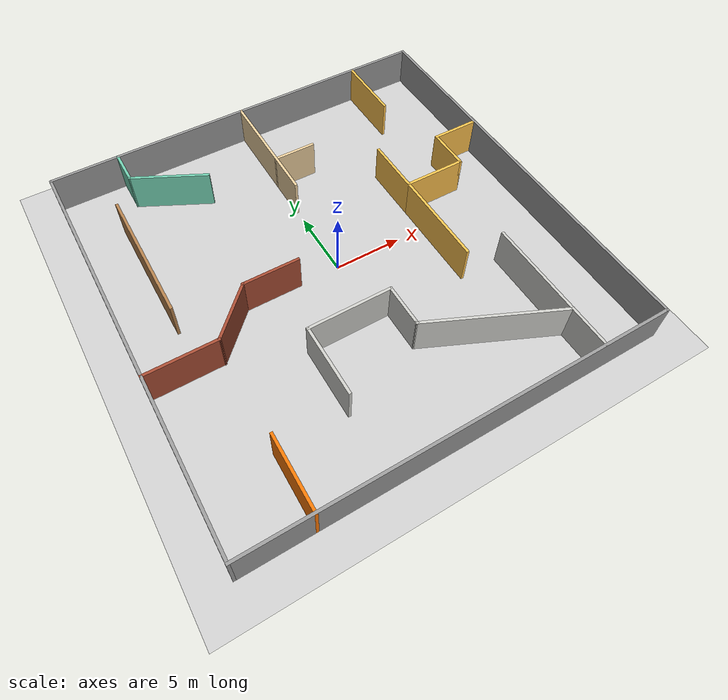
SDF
<sdf version="1.7">
 <world name="default">
  <light name="sun" type="directional">
   <pose>0 0 10 0 -0 0</pose>
   <diffuse>0.8 0.8 0.8 1</diffuse>
   <specular>0.2 0.2 0.2 1</specular>
   <attenuation>
    <range>1000</range>
    <constant>0.9</constant>
    <linear>0.01</linear>
    <quadratic>0.001</quadratic>
   </attenuation>
   <direction>-0.05 0.05 -0.9</direction>
   <spot><inner_angle>0</inner_angle><outer_angle>0</outer_angle><falloff>0</falloff></spot>
  </light>
  <model name="ground_plane">
   <static>1</static>
   <link name="link">
    <collision name="collision">
     <geometry><plane><normal>0 0 1</normal><size>100 100</size></plane></geometry>
     <surface>
      <contact><collide_bitmask>65535</collide_bitmask></contact>
      <friction><ode><mu>100</mu><mu2>50</mu2></ode></friction>
     </surface>
    </collision>
    <visual name="visual">
     <cast_shadows>0</cast_shadows>
     <geometry><plane><normal>0 0 1</normal><size>100 100</size></plane></geometry>
     <material>
      <script><uri>file://media/materials/scripts/gazebo.material</uri><name>Gazebo/Grey</name></script>
     </material>
    </visual>
   </link>
  </model>
  <gravity>0 0 -9.8</gravity>
  <magnetic_field>6e-06 2.3e-05 -4.2e-05</magnetic_field>
  <atmosphere type="adiabatic"/>
  <physics type="ode">
   <max_step_size>0.001</max_step_size>
   <real_time_factor>1</real_time_factor>
   <real_time_update_rate>1000</real_time_update_rate>
  </physics>
  <scene><ambient>0.4 0.4 0.4 1</ambient><background>0.7 0.7 0.7 1</background><shadows>1</shadows></scene>
  <spherical_coordinates>
   <surface_model>EARTH_WGS84</surface_model>
   <latitude_deg>0</latitude_deg>
   <longitude_deg>0</longitude_deg>
   <elevation>0</elevation>
   <heading_deg>0</heading_deg>
  </spherical_coordinates>
  <model name="Fence30">
   <link name="Wall_0">
    <collision name="Wall_0_Collision">
     <geometry><box><size>30.2 0.2 3</size></box></geometry>
     <pose>0 0 1.5 0 -0 0</pose>
    </collision>
    <visual name="Wall_0_Visual">
     <pose>0 0 1.5 0 -0 0</pose>
     <geometry><box><size>30.2 0.2 3</size></box></geometry>
     <material>
      <script><uri>file://media/materials/scripts/gazebo.material</uri><name>Gazebo/Grey</name></script>
      <ambient>1 1 1 1</ambient>
     </material>
     <meta><layer>0</layer></meta>
    </visual>
    <pose>0 -15 0 0 -0 3.14159</pose>
   </link>
   <link name="Wall_1">
    <collision name="Wall_1_Collision">
     <geometry><box><size>30.2 0.2 3</size></box></geometry>
     <pose>0 0 1.5 0 -0 0</pose>
    </collision>
    <visual name="Wall_1_Visual">
     <pose>0 0 1.5 0 -0 0</pose>
     <geometry><box><size>30.2 0.2 3</size></box></geometry>
     <material>
      <script><uri>file://media/materials/scripts/gazebo.material</uri><name>Gazebo/Grey</name></script>
      <ambient>1 1 1 1</ambient>
     </material>
     <meta><layer>0</layer></meta>
    </visual>
    <pose>-15 0 0 0 -0 1.5708</pose>
   </link>
   <link name="Wall_2">
    <collision name="Wall_2_Collision">
     <geometry><box><size>30.2 0.2 3</size></box></geometry>
     <pose>0 0 1.5 0 -0 0</pose>
    </collision>
    <visual name="Wall_2_Visual">
     <pose>0 0 1.5 0 -0 0</pose>
     <geometry><box><size>30.2 0.2 3</size></box></geometry>
     <material>
      <script><uri>file://media/materials/scripts/gazebo.material</uri><name>Gazebo/Grey</name></script>
      <ambient>1 1 1 1</ambient>
     </material>
     <meta><layer>0</layer></meta>
    </visual>
    <pose>0 15 0 0 -0 0</pose>
   </link>
   <link name="Wall_3">
    <collision name="Wall_3_Collision">
     <geometry><box><size>30.2 0.2 3</size></box></geometry>
     <pose>0 0 1.5 0 -0 0</pose>
    </collision>
    <visual name="Wall_3_Visual">
     <pose>0 0 1.5 0 -0 0</pose>
     <geometry><box><size>30.2 0.2 3</size></box></geometry>
     <material>
      <script><uri>file://media/materials/scripts/gazebo.material</uri><name>Gazebo/Grey</name></script>
      <ambient>1 1 1 1</ambient>
     </material>
     <meta><layer>0</layer></meta>
    </visual>
    <pose>15 0 0 0 -0 -1.5708</pose>
   </link>
   <static>1</static>
  </model>
  <model name="Maze30">
   <link name="Wall_11">
    <collision name="Wall_11_Collision">
     <geometry><box><size>5.79017 0.2 3</size></box></geometry>
     <pose>0 0 1.5 0 -0 0</pose>
    </collision>
    <visual name="Wall_11_Visual">
     <pose>0 0 1.5 0 -0 0</pose>
     <geometry><box><size>5.79017 0.2 3</size></box></geometry>
     <material>
      <script><uri>file://media/materials/scripts/gazebo.material</uri><name>Gazebo/Grey</name></script>
      <ambient>0.435294 0.796078 0.67451 1</ambient>
     </material>
     <meta><layer>0</layer></meta>
    </visual>
    <pose>-7.5 11.25 0 0 -0 -0.463648</pose>
   </link>
   <link name="Wall_13">
    <collision name="Wall_13_Collision">
     <geometry><box><size>5.2 0.2 3</size></box></geometry>
     <pose>0 0 1.5 0 -0 0</pose>
    </collision>
    <visual name="Wall_13_Visual">
     <pose>0 0 1.5 0 -0 0</pose>
     <geometry><box><size>5.2 0.2 3</size></box></geometry>
     <material>
      <script><uri>file://media/materials/scripts/gazebo.material</uri><name>Gazebo/Grey</name></script>
      <ambient>0.996078 0.47451 0.0196078 1</ambient>
     </material>
     <meta><layer>0</layer></meta>
    </visual>
    <pose>-10 -12.5 0 0 -0 -1.5708</pose>
   </link>
   <link name="Wall_15">
    <collision name="Wall_15_Collision">
     <geometry><box><size>10.0489 0.2 3</size></box></geometry>
     <pose>0 0 1.5 0 -0 0</pose>
    </collision>
    <visual name="Wall_15_Visual">
     <pose>0 0 1.5 0 -0 0</pose>
     <geometry><box><size>10.0489 0.2 3</size></box></geometry>
     <material>
      <script><uri>file://media/materials/scripts/gazebo.material</uri><name>Gazebo/CeilingTiled</name></script>
      <ambient>0.760784 0.662745 0.627451 1</ambient>
     </material>
     <meta><layer>0</layer></meta>
    </visual>
    <pose>5.5 -10 0 0 -0 -0.418224</pose>
   </link>
   <link name="Wall_16">
    <collision name="Wall_16_Collision">
     <geometry><box><size>3.2 0.2 3</size></box></geometry>
     <pose>0 0 1.5 0 -0 0</pose>
    </collision>
    <visual name="Wall_16_Visual">
     <pose>0 0 1.5 0 -0 0</pose>
     <geometry><box><size>3.2 0.2 3</size></box></geometry>
     <material>
      <script><uri>file://media/materials/scripts/gazebo.material</uri><name>Gazebo/CeilingTiled</name></script>
      <ambient>0.760784 0.662745 0.627451 1</ambient>
     </material>
     <meta><layer>0</layer></meta>
    </visual>
    <pose>10 -13.5 0 0 -0 -1.5708</pose>
   </link>
   <link name="Wall_18">
    <collision name="Wall_18_Collision">
     <geometry><box><size>4.2 0.2 3</size></box></geometry>
     <pose>0 0 1.5 0 -0 0</pose>
    </collision>
    <visual name="Wall_18_Visual">
     <pose>0 0 1.5 0 -0 0</pose>
     <geometry><box><size>4.2 0.2 3</size></box></geometry>
     <material>
      <script><uri>file://media/materials/scripts/gazebo.material</uri><name>Gazebo/Grey</name></script>
      <ambient>1 0.764706 0.305882 1</ambient>
     </material>
     <meta><layer>0</layer></meta>
    </visual>
    <pose>7 4 0 0 -0 -1.5708</pose>
   </link>
   <link name="Wall_19">
    <collision name="Wall_19_Collision">
     <geometry><box><size>4.7 0.2 3</size></box></geometry>
     <pose>0 0 1.5 0 -0 0</pose>
    </collision>
    <visual name="Wall_19_Visual">
     <pose>0 0 1.5 0 -0 0</pose>
     <geometry><box><size>4.7 0.2 3</size></box></geometry>
     <material>
      <script><uri>file://media/materials/scripts/gazebo.material</uri><name>Gazebo/Grey</name></script>
      <ambient>1 0.764706 0.305882 1</ambient>
     </material>
     <meta><layer>0</layer></meta>
    </visual>
    <pose>9.25 2 0 0 -0 0</pose>
   </link>
   <link name="Wall_20">
    <collision name="Wall_20_Collision">
     <geometry><box><size>3.2 0.2 3</size></box></geometry>
     <pose>0 0 1.5 0 -0 0</pose>
    </collision>
    <visual name="Wall_20_Visual">
     <pose>0 0 1.5 0 -0 0</pose>
     <geometry><box><size>3.2 0.2 3</size></box></geometry>
     <material>
      <script><uri>file://media/materials/scripts/gazebo.material</uri><name>Gazebo/Grey</name></script>
      <ambient>1 0.764706 0.305882 1</ambient>
     </material>
     <meta><layer>0</layer></meta>
    </visual>
    <pose>11.5 3.5 0 0 -0 1.5708</pose>
   </link>
   <link name="Wall_21">
    <collision name="Wall_21_Collision">
     <geometry><box><size>3.7 0.2 3</size></box></geometry>
     <pose>0 0 1.5 0 -0 0</pose>
    </collision>
    <visual name="Wall_21_Visual">
     <pose>0 0 1.5 0 -0 0</pose>
     <geometry><box><size>3.7 0.2 3</size></box></geometry>
     <material>
      <script><uri>file://media/materials/scripts/gazebo.material</uri><name>Gazebo/Grey</name></script>
      <ambient>1 0.764706 0.305882 1</ambient>
     </material>
     <meta><layer>0</layer></meta>
    </visual>
    <pose>13.25 5 0 0 -0 0</pose>
   </link>
   <link name="Wall_23">
    <collision name="Wall_23_Collision">
     <geometry><box><size>9.2 0.2 3</size></box></geometry>
     <pose>0 0 1.5 0 -0 0</pose>
    </collision>
    <visual name="Wall_23_Visual">
     <pose>0 0 1.5 0 -0 0</pose>
     <geometry><box><size>9.2 0.2 3</size></box></geometry>
     <material>
      <script><uri>file://media/materials/scripts/gazebo.material</uri><name>Gazebo/Grey</name></script>
      <ambient>0.921569 0.807843 0.615686 1</ambient>
     </material>
     <meta><layer>0</layer></meta>
    </visual>
    <pose>0 10.5 0 0 -0 1.5708</pose>
   </link>
   <link name="Wall_25">
    <collision name="Wall_25_Collision">
     <geometry><box><size>3.2 0.2 3</size></box></geometry>
     <pose>0 0 1.5 0 -0 0</pose>
    </collision>
    <visual name="Wall_25_Visual">
     <pose>0 0 1.5 0 -0 0</pose>
     <geometry><box><size>3.2 0.2 3</size></box></geometry>
     <material>
      <script><uri>file://media/materials/scripts/gazebo.material</uri><name>Gazebo/Grey</name></script>
      <ambient>0.921569 0.807843 0.615686 1</ambient>
     </material>
     <meta><layer>0</layer></meta>
    </visual>
    <pose>1.5 9 0 0 -0 0</pose>
   </link>
   <link name="Wall_27">
    <collision name="Wall_27_Collision">
     <geometry><box><size>5.2 0.2 3</size></box></geometry>
     <pose>0 0 1.5 0 -0 0</pose>
    </collision>
    <visual name="Wall_27_Visual">
     <pose>0 0 1.5 0 -0 0</pose>
     <geometry><box><size>5.2 0.2 3</size></box></geometry>
     <material>
      <script><uri>file://media/materials/scripts/gazebo.material</uri><name>Gazebo/Grey</name></script>
      <ambient>1 0.764706 0.305882 1</ambient>
     </material>
     <meta><layer>0</layer></meta>
    </visual>
    <pose>10 12.5 0 0 -0 -1.5708</pose>
   </link>
   <link name="Wall_29">
    <collision name="Wall_29_Collision">
     <geometry><box><size>5.2 0.2 3</size></box></geometry>
     <pose>0 0 1.5 0 -0 0</pose>
    </collision>
    <visual name="Wall_29_Visual">
     <pose>0 0 1.5 0 -0 0</pose>
     <geometry><box><size>5.2 0.2 3</size></box></geometry>
     <material>
      <script><uri>file://media/materials/scripts/gazebo.material</uri><name>Gazebo/CeilingTiled</name></script>
      <ambient>0.760784 0.662745 0.627451 1</ambient>
     </material>
     <meta><layer>0</layer></meta>
    </visual>
    <pose>-5 -7.5 0 0 -0 1.5708</pose>
   </link>
   <link name="Wall_30">
    <collision name="Wall_30_Collision">
     <geometry><box><size>6.2 0.2 3</size></box></geometry>
     <pose>0 0 1.5 0 -0 0</pose>
    </collision>
    <visual name="Wall_30_Visual">
     <pose>0 0 1.5 0 -0 0</pose>
     <geometry><box><size>6.2 0.2 3</size></box></geometry>
     <material>
      <script><uri>file://media/materials/scripts/gazebo.material</uri><name>Gazebo/CeilingTiled</name></script>
      <ambient>0.760784 0.662745 0.627451 1</ambient>
     </material>
     <meta><layer>0</layer></meta>
    </visual>
    <pose>-2 -5 0 0 -0 0</pose>
   </link>
   <link name="Wall_31">
    <collision name="Wall_31_Collision">
     <geometry><box><size>3.2 0.2 3</size></box></geometry>
     <pose>0 0 1.5 0 -0 0</pose>
    </collision>
    <visual name="Wall_31_Visual">
     <pose>0 0 1.5 0 -0 0</pose>
     <geometry><box><size>3.2 0.2 3</size></box></geometry>
     <material>
      <script><uri>file://media/materials/scripts/gazebo.material</uri><name>Gazebo/CeilingTiled</name></script>
      <ambient>0.760784 0.662745 0.627451 1</ambient>
     </material>
     <meta><layer>0</layer></meta>
    </visual>
    <pose>1 -6.5 0 0 -0 -1.5708</pose>
   </link>
   <link name="Wall_33">
    <collision name="Wall_33_Collision">
     <geometry><box><size>10.05 0.2 3</size></box></geometry>
     <pose>0 0 1.5 0 -0 0</pose>
    </collision>
    <visual name="Wall_33_Visual">
     <pose>0 0 1.5 0 -0 0</pose>
     <geometry><box><size>10.05 0.2 3</size></box></geometry>
     <material>
      <script><uri>file://media/materials/scripts/gazebo.material</uri><name>Gazebo/Wood</name></script>
      <ambient>1 1 1 1</ambient>
     </material>
     <meta><layer>0</layer></meta>
    </visual>
    <pose>-11.671 5.53736 0 0 -0 -1.5708</pose>
   </link>
   <link name="Wall_35">
    <collision name="Wall_35_Collision">
     <geometry><box><size>7.2 0.2 3</size></box></geometry>
     <pose>0 0 1.5 0 -0 0</pose>
    </collision>
    <visual name="Wall_35_Visual">
     <pose>0 0 1.5 0 -0 0</pose>
     <geometry><box><size>7.2 0.2 3</size></box></geometry>
     <material>
      <script><uri>file://media/materials/scripts/gazebo.material</uri><name>Gazebo/Grey</name></script>
      <ambient>1 0.764706 0.305882 1</ambient>
     </material>
     <meta><layer>0</layer></meta>
    </visual>
    <pose>7 -1.5 0 0 -0 -1.5708</pose>
   </link>
   <link name="Wall_39">
    <collision name="Wall_39_Collision">
     <geometry><box><size>7.2 0.2 3</size></box></geometry>
     <pose>0 0 1.5 0 -0 0</pose>
    </collision>
    <visual name="Wall_39_Visual">
     <pose>0 0 1.5 0 -0 0</pose>
     <geometry><box><size>7.2 0.2 3</size></box></geometry>
     <material>
      <script><uri>file://media/materials/scripts/gazebo.material</uri><name>Gazebo/CeilingTiled</name></script>
      <ambient>0.760784 0.662745 0.627451 1</ambient>
     </material>
     <meta><layer>0</layer></meta>
    </visual>
    <pose>10 -8.5 0 0 -0 1.5708</pose>
   </link>
   <link name="Wall_4">
    <collision name="Wall_4_Collision">
     <geometry><box><size>5.2 0.2 3</size></box></geometry>
     <pose>0 0 1.5 0 -0 0</pose>
    </collision>
    <visual name="Wall_4_Visual">
     <pose>0 0 1.5 0 -0 0</pose>
     <geometry><box><size>5.2 0.2 3</size></box></geometry>
     <material>
      <script><uri>file://media/materials/scripts/gazebo.material</uri><name>Gazebo/Bricks</name></script>
      <ambient>1 1 1 1</ambient>
     </material>
     <meta><layer>0</layer></meta>
    </visual>
    <pose>-12.5 -3 0 0 -0 0</pose>
   </link>
   <link name="Wall_6">
    <collision name="Wall_6_Collision">
     <geometry><box><size>4.44264 0.2 3</size></box></geometry>
     <pose>0 0 1.5 0 -0 0</pose>
    </collision>
    <visual name="Wall_6_Visual">
     <pose>0 0 1.5 0 -0 0</pose>
     <geometry><box><size>4.44264 0.2 3</size></box></geometry>
     <material>
      <script><uri>file://media/materials/scripts/gazebo.material</uri><name>Gazebo/Bricks</name></script>
      <ambient>1 1 1 1</ambient>
     </material>
     <meta><layer>0</layer></meta>
    </visual>
    <pose>-8.5 -1.5 0 0 -0 0.785398</pose>
   </link>
   <link name="Wall_7">
    <collision name="Wall_7_Collision">
     <geometry><box><size>4.2 0.2 3</size></box></geometry>
     <pose>0 0 1.5 0 -0 0</pose>
    </collision>
    <visual name="Wall_7_Visual">
     <pose>0 0 1.5 0 -0 0</pose>
     <geometry><box><size>4.2 0.2 3</size></box></geometry>
     <material>
      <script><uri>file://media/materials/scripts/gazebo.material</uri><name>Gazebo/Bricks</name></script>
      <ambient>1 1 1 1</ambient>
     </material>
     <meta><layer>0</layer></meta>
    </visual>
    <pose>-5 0 0 0 -0 0</pose>
   </link>
   <link name="Wall_9">
    <collision name="Wall_9_Collision">
     <geometry><box><size>2.7 0.2 3</size></box></geometry>
     <pose>0 0 1.5 0 -0 0</pose>
    </collision>
    <visual name="Wall_9_Visual">
     <pose>0 0 1.5 0 -0 0</pose>
     <geometry><box><size>2.7 0.2 3</size></box></geometry>
     <material>
      <script><uri>file://media/materials/scripts/gazebo.material</uri><name>Gazebo/Grey</name></script>
      <ambient>0.435294 0.796078 0.67451 1</ambient>
     </material>
     <meta><layer>0</layer></meta>
    </visual>
    <pose>-10 13.75 0 0 -0 1.5708</pose>
   </link>
   <static>1</static>
  </model>
 </world>
</sdf>
